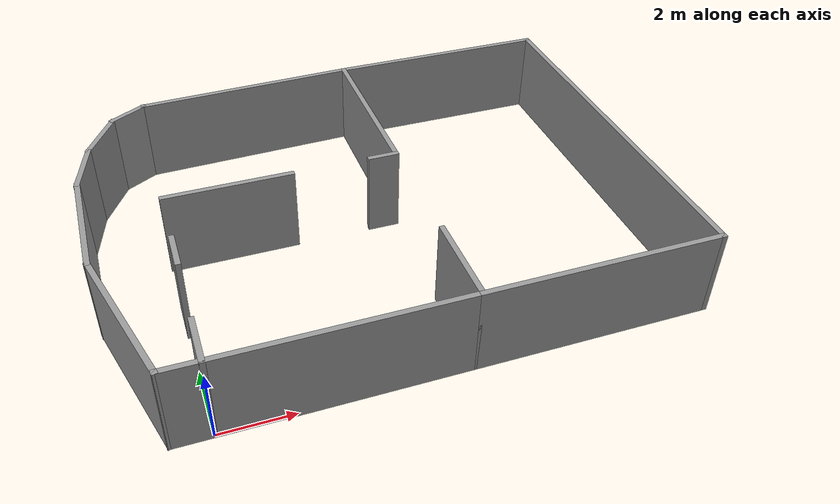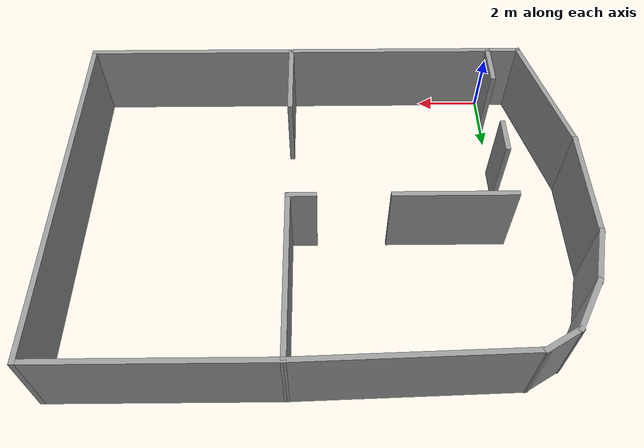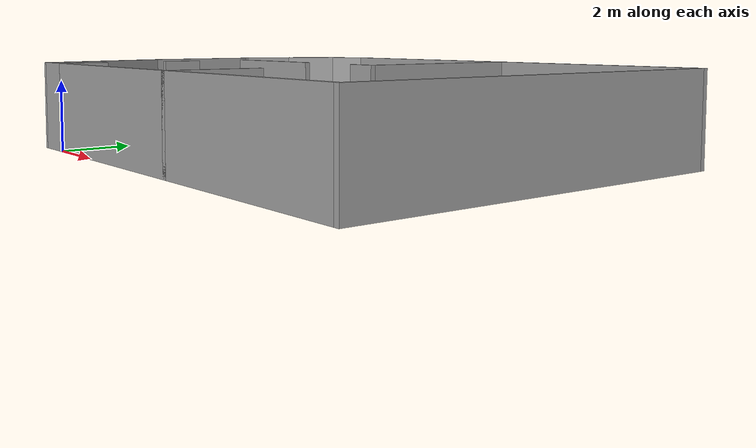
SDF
<?xml version='1.0'?>
<sdf version='1.6'>
  <model name='technikum_digital_factory'>
    <pose frame=''>5.46099 5.49277 0 0 -0 0</pose>
    <link name='Wall_0'>
      <collision name='Wall_0_Collision'>
        <geometry>
          <box>
            <size>6.65 0.15 2.5</size>
          </box>
        </geometry>
        <pose frame=''>0 0 1.25 0 -0 0</pose>
      </collision>
      <visual name='Wall_0_Visual'>
        <pose frame=''>0 0 1.25 0 -0 0</pose>
        <geometry>
          <box>
            <size>6.65 0.15 2.5</size>
          </box>
        </geometry>
        <material>
          <script>
            <uri>file://media/materials/scripts/gazebo.material</uri>
            <name>Gazebo/Grey</name>
          </script>
          <ambient>1 1 1 1</ambient>
        </material>
        <meta>
          <layer>0</layer>
        </meta>
      </visual>
      <pose frame=''>-2.21099 -5.49277 0 0 -0 0</pose>
    </link>
    <link name='Wall_1'>
      <collision name='Wall_1_Collision'>
        <geometry>
          <box>
            <size>6.65 0.15 2.5</size>
          </box>
        </geometry>
        <pose frame=''>0 0 1.25 0 -0 0</pose>
      </collision>
      <visual name='Wall_1_Visual'>
        <pose frame=''>0 0 1.25 0 -0 0</pose>
        <geometry>
          <box>
            <size>6.65 0.15 2.5</size>
          </box>
        </geometry>
        <material>
          <script>
            <uri>file://media/materials/scripts/gazebo.material</uri>
            <name>Gazebo/Grey</name>
          </script>
          <ambient>1 1 1 1</ambient>
        </material>
        <meta>
          <layer>0</layer>
        </meta>
      </visual>
      <pose frame=''>4.28901 -5.49277 0 0 -0 0</pose>
    </link>
    <link name='Wall_12'>
      <collision name='Wall_12_Collision'>
        <geometry>
          <box>
            <size>1.45 0.15 2.5</size>
          </box>
        </geometry>
        <pose frame=''>0 0 1.25 0 -0 0</pose>
      </collision>
      <visual name='Wall_12_Visual'>
        <pose frame=''>0 0 1.25 0 -0 0</pose>
        <geometry>
          <box>
            <size>1.45 0.15 2.5</size>
          </box>
        </geometry>
        <material>
          <script>
            <uri>file://media/materials/scripts/gazebo.material</uri>
            <name>Gazebo/Grey</name>
          </script>
          <ambient>1 1 1 1</ambient>
        </material>
        <meta>
          <layer>0</layer>
        </meta>
      </visual>
      <pose frame=''>-5.46099 -4.84277 0 0 -0 1.5708</pose>
    </link>
    <link name='Wall_14'>
      <collision name='Wall_14_Collision'>
        <geometry>
          <box>
            <size>0.9 0.15 2.5</size>
          </box>
        </geometry>
        <pose frame=''>0 0 1.25 0 -0 0</pose>
      </collision>
      <visual name='Wall_14_Visual'>
        <pose frame=''>0 0 1.25 0 -0 0</pose>
        <geometry>
          <box>
            <size>0.9 0.15 2.5</size>
          </box>
        </geometry>
        <material>
          <script>
            <uri>file://media/materials/scripts/gazebo.material</uri>
            <name>Gazebo/Grey</name>
          </script>
          <ambient>1 1 1 1</ambient>
        </material>
        <meta>
          <layer>0</layer>
        </meta>
      </visual>
      <pose frame=''>0.664007 0.507225 0 0 -0 3.14159</pose>
    </link>
    <link name='Wall_16'>
      <collision name='Wall_16_Collision'>
        <geometry>
          <box>
            <size>1.15 0.15 2.5</size>
          </box>
        </geometry>
        <pose frame=''>0 0 1.25 0 -0 0</pose>
      </collision>
      <visual name='Wall_16_Visual'>
        <pose frame=''>0 0 1.25 0 -0 0</pose>
        <geometry>
          <box>
            <size>1.15 0.15 2.5</size>
          </box>
        </geometry>
        <material>
          <script>
            <uri>file://media/materials/scripts/gazebo.material</uri>
            <name>Gazebo/Grey</name>
          </script>
          <ambient>1 1 1 1</ambient>
        </material>
        <meta>
          <layer>0</layer>
        </meta>
      </visual>
      <pose frame=''>-5.46099 -1.69277 0 0 -0 1.5708</pose>
    </link>
    <link name='Wall_18'>
      <collision name='Wall_18_Collision'>
        <geometry>
          <box>
            <size>3.65 0.15 2.5</size>
          </box>
        </geometry>
        <pose frame=''>0 0 1.25 0 -0 0</pose>
      </collision>
      <visual name='Wall_18_Visual'>
        <pose frame=''>0 0 1.25 0 -0 0</pose>
        <geometry>
          <box>
            <size>3.65 0.15 2.5</size>
          </box>
        </geometry>
        <material>
          <script>
            <uri>file://media/materials/scripts/gazebo.material</uri>
            <name>Gazebo/Grey</name>
          </script>
          <ambient>1 1 1 1</ambient>
        </material>
        <meta>
          <layer>0</layer>
        </meta>
      </visual>
      <pose frame=''>-3.71099 0.507225 0 0 -0 0</pose>
    </link>
    <link name='Wall_3'>
      <collision name='Wall_3_Collision'>
        <geometry>
          <box>
            <size>1.15 0.15 2.5</size>
          </box>
        </geometry>
        <pose frame=''>0 0 1.25 0 -0 0</pose>
      </collision>
      <visual name='Wall_3_Visual'>
        <pose frame=''>0 0 1.25 0 -0 0</pose>
        <geometry>
          <box>
            <size>1.15 0.15 2.5</size>
          </box>
        </geometry>
        <material>
          <script>
            <uri>file://media/materials/scripts/gazebo.material</uri>
            <name>Gazebo/Grey</name>
          </script>
          <ambient>1 1 1 1</ambient>
        </material>
        <meta>
          <layer>0</layer>
        </meta>
      </visual>
      <pose frame=''>-5.96099 -5.49277 0 0 -0 3.14159</pose>
    </link>
    <link name='Wall_44'>
      <collision name='Wall_44_Collision'>
        <geometry>
          <box>
            <size>4.25 0.15 2.5</size>
          </box>
        </geometry>
        <pose frame=''>0 0 1.25 0 -0 0</pose>
      </collision>
      <visual name='Wall_44_Visual'>
        <pose frame=''>0 0 1.25 0 -0 0</pose>
        <geometry>
          <box>
            <size>4.25 0.15 2.5</size>
          </box>
        </geometry>
        <material>
          <script>
            <uri>file://media/materials/scripts/gazebo.material</uri>
            <name>Gazebo/Grey</name>
          </script>
          <ambient>1 1 1 1</ambient>
        </material>
        <meta>
          <layer>0</layer>
        </meta>
      </visual>
      <pose frame=''>-6.99157 -3.51263 0 0 -0 1.8326</pose>
    </link>
    <link name='Wall_45'>
      <collision name='Wall_45_Collision'>
        <geometry>
          <box>
            <size>3.5 0.15 2.5</size>
          </box>
        </geometry>
        <pose frame=''>0 0 1.25 0 -0 0</pose>
      </collision>
      <visual name='Wall_45_Visual'>
        <pose frame=''>0 0 1.25 0 -0 0</pose>
        <geometry>
          <box>
            <size>3.5 0.15 2.5</size>
          </box>
        </geometry>
        <material>
          <script>
            <uri>file://media/materials/scripts/gazebo.material</uri>
            <name>Gazebo/Grey</name>
          </script>
          <ambient>1 1 1 1</ambient>
        </material>
        <meta>
          <layer>0</layer>
        </meta>
      </visual>
      <pose frame=''>-7.52215 0.142521 0 0 -0 1.5708</pose>
    </link>
    <link name='Wall_46'>
      <collision name='Wall_46_Collision'>
        <geometry>
          <box>
            <size>1.75 0.15 2.5</size>
          </box>
        </geometry>
        <pose frame=''>0 0 1.25 0 -0 0</pose>
      </collision>
      <visual name='Wall_46_Visual'>
        <pose frame=''>0 0 1.25 0 -0 0</pose>
        <geometry>
          <box>
            <size>1.75 0.15 2.5</size>
          </box>
        </geometry>
        <material>
          <script>
            <uri>file://media/materials/scripts/gazebo.material</uri>
            <name>Gazebo/Grey</name>
          </script>
          <ambient>1 1 1 1</ambient>
        </material>
        <meta>
          <layer>0</layer>
        </meta>
      </visual>
      <pose frame=''>-7.3151 2.59026 0 0 -0 1.309</pose>
    </link>
    <link name='Wall_47'>
      <collision name='Wall_47_Collision'>
        <geometry>
          <box>
            <size>1.75 0.15 2.5</size>
          </box>
        </geometry>
        <pose frame=''>0 0 1.25 0 -0 0</pose>
      </collision>
      <visual name='Wall_47_Visual'>
        <pose frame=''>0 0 1.25 0 -0 0</pose>
        <geometry>
          <box>
            <size>1.75 0.15 2.5</size>
          </box>
        </geometry>
        <material>
          <script>
            <uri>file://media/materials/scripts/gazebo.material</uri>
            <name>Gazebo/Grey</name>
          </script>
          <ambient>1 1 1 1</ambient>
        </material>
        <meta>
          <layer>0</layer>
        </meta>
      </visual>
      <pose frame=''>-6.70804 4.05582 0 0 -0 1.0472</pose>
    </link>
    <link name='Wall_48'>
      <collision name='Wall_48_Collision'>
        <geometry>
          <box>
            <size>1.25 0.15 2.5</size>
          </box>
        </geometry>
        <pose frame=''>0 0 1.25 0 -0 0</pose>
      </collision>
      <visual name='Wall_48_Visual'>
        <pose frame=''>0 0 1.25 0 -0 0</pose>
        <geometry>
          <box>
            <size>1.25 0.15 2.5</size>
          </box>
        </geometry>
        <material>
          <script>
            <uri>file://media/materials/scripts/gazebo.material</uri>
            <name>Gazebo/Grey</name>
          </script>
          <ambient>1 1 1 1</ambient>
        </material>
        <meta>
          <layer>0</layer>
        </meta>
      </visual>
      <pose frame=''>-5.83173 5.02364 0 0 -0 0.523599</pose>
    </link>
    <link name='Wall_49'>
      <collision name='Wall_49_Collision'>
        <geometry>
          <box>
            <size>6.54782 0.15 2.5</size>
          </box>
        </geometry>
        <pose frame=''>0 0 1.25 0 -0 0</pose>
      </collision>
      <visual name='Wall_49_Visual'>
        <pose frame=''>0 0 1.25 0 -0 0</pose>
        <geometry>
          <box>
            <size>6.54782 0.15 2.5</size>
          </box>
        </geometry>
        <material>
          <script>
            <uri>file://media/materials/scripts/gazebo.material</uri>
            <name>Gazebo/Grey</name>
          </script>
          <ambient>1 1 1 1</ambient>
        </material>
        <meta>
          <layer>0</layer>
        </meta>
      </visual>
      <pose frame=''>-2.1582 5.40293 0 0 -0 0.032608</pose>
    </link>
    <link name='Wall_5'>
      <collision name='Wall_5_Collision'>
        <geometry>
          <box>
            <size>11.15 0.15 2.5</size>
          </box>
        </geometry>
        <pose frame=''>0 0 1.25 0 -0 0</pose>
      </collision>
      <visual name='Wall_5_Visual'>
        <pose frame=''>0 0 1.25 0 -0 0</pose>
        <geometry>
          <box>
            <size>11.15 0.15 2.5</size>
          </box>
        </geometry>
        <material>
          <script>
            <uri>file://media/materials/scripts/gazebo.material</uri>
            <name>Gazebo/Grey</name>
          </script>
          <ambient>1 1 1 1</ambient>
        </material>
        <meta>
          <layer>0</layer>
        </meta>
      </visual>
      <pose frame=''>7.53901 0.007225 0 0 -0 1.5708</pose>
    </link>
    <link name='Wall_6'>
      <collision name='Wall_6_Collision'>
        <geometry>
          <box>
            <size>6.65 0.15 2.5</size>
          </box>
        </geometry>
        <pose frame=''>0 0 1.25 0 -0 0</pose>
      </collision>
      <visual name='Wall_6_Visual'>
        <pose frame=''>0 0 1.25 0 -0 0</pose>
        <geometry>
          <box>
            <size>6.65 0.15 2.5</size>
          </box>
        </geometry>
        <material>
          <script>
            <uri>file://media/materials/scripts/gazebo.material</uri>
            <name>Gazebo/Grey</name>
          </script>
          <ambient>1 1 1 1</ambient>
        </material>
        <meta>
          <layer>0</layer>
        </meta>
      </visual>
      <pose frame=''>4.28901 5.50723 0 0 -0 3.14159</pose>
    </link>
    <link name='Wall_7'>
      <collision name='Wall_7_Collision'>
        <geometry>
          <box>
            <size>5.15 0.15 2.5</size>
          </box>
        </geometry>
        <pose frame=''>0 0 1.25 0 -0 0</pose>
      </collision>
      <visual name='Wall_7_Visual'>
        <pose frame=''>0 0 1.25 0 -0 0</pose>
        <geometry>
          <box>
            <size>5.15 0.15 2.5</size>
          </box>
        </geometry>
        <material>
          <script>
            <uri>file://media/materials/scripts/gazebo.material</uri>
            <name>Gazebo/Grey</name>
          </script>
          <ambient>1 1 1 1</ambient>
        </material>
        <meta>
          <layer>0</layer>
        </meta>
      </visual>
      <pose frame=''>1.03901 3.00723 0 0 -0 -1.5708</pose>
    </link>
    <link name='Wall_9'>
      <collision name='Wall_9_Collision'>
        <geometry>
          <box>
            <size>2.65 0.15 2.5</size>
          </box>
        </geometry>
        <pose frame=''>0 0 1.25 0 -0 0</pose>
      </collision>
      <visual name='Wall_9_Visual'>
        <pose frame=''>0 0 1.25 0 -0 0</pose>
        <geometry>
          <box>
            <size>2.65 0.15 2.5</size>
          </box>
        </geometry>
        <material>
          <script>
            <uri>file://media/materials/scripts/gazebo.material</uri>
            <name>Gazebo/Grey</name>
          </script>
          <ambient>1 1 1 1</ambient>
        </material>
        <meta>
          <layer>0</layer>
        </meta>
      </visual>
      <pose frame=''>1.03901 -4.24277 0 0 -0 1.5708</pose>
    </link>
    <static>1</static>
  </model>
</sdf>
